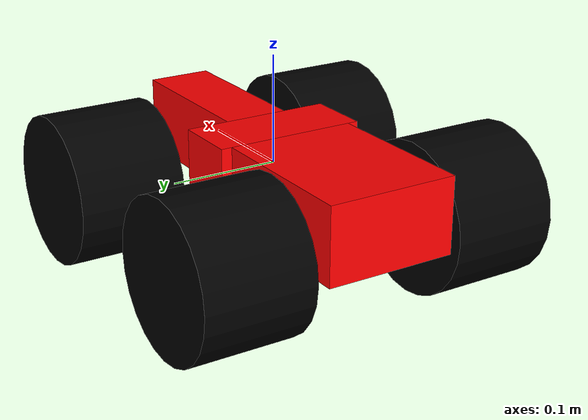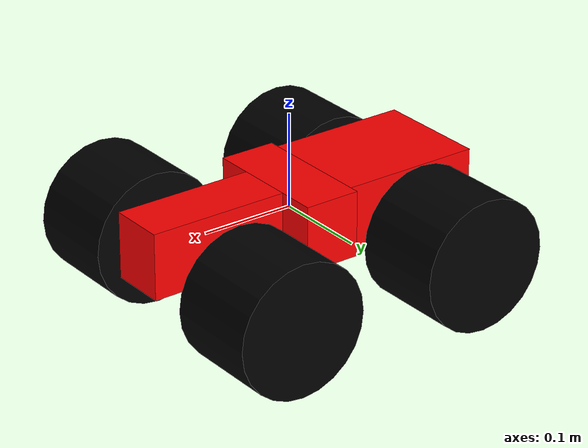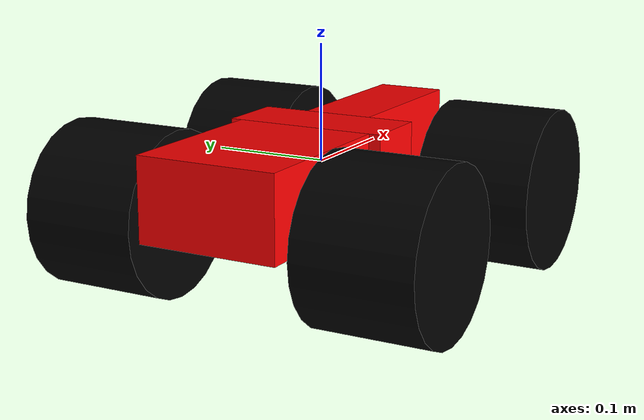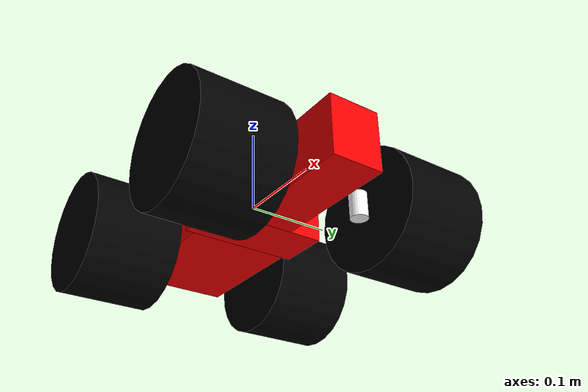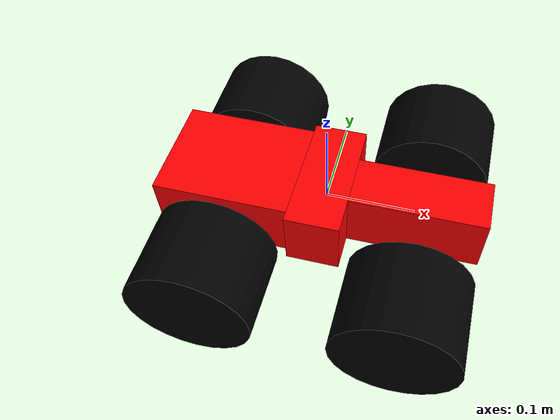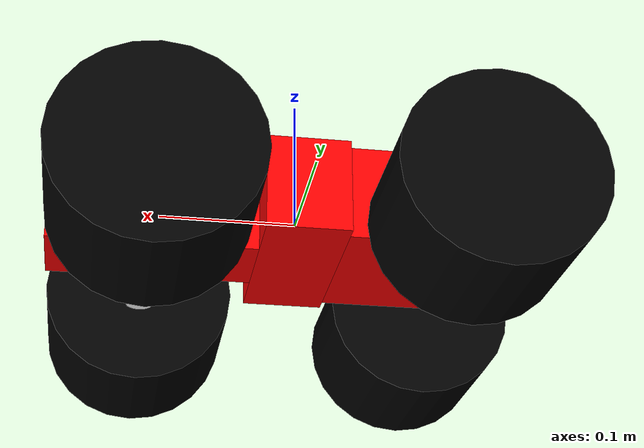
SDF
<?xml version="1.0" ?>
<sdf version="1.8">
  <model name="ackermann_car">

    <link name="chassis">
      <inertial>
        <mass>1.0</mass>
        <inertia>
          <ixx>0.005</ixx>
          <iyy>0.007</iyy>
          <izz>0.011</izz>
        </inertia>
      </inertial>

      <!-- Front section of chassis -->
      <collision name="chassis_front_collision">
        <pose>0.105 0 0 0 0 0</pose>
        <geometry>
          <box>
            <size>0.15 0.06 0.07</size>
          </box>
        </geometry>
      </collision>
      <visual name="chassis_front_visual">
        <pose>0.105 0 0 0 0 0</pose>
        <geometry>
          <box>
            <size>0.15 0.06 0.07</size>
          </box>
        </geometry>
        <material>
          <ambient>1 0 0 1</ambient>
          <diffuse>1 0 0 1</diffuse>
          <specular>0.1 0.1 0.1 1</specular>
        </material>
      </visual>

      <!-- Middle section of chassis -->
      <collision name="chassis_middle_collision">
        <pose>0 0 0 0 0 0</pose>
        <geometry>
          <box>
            <size>0.06 0.14 0.07</size>
          </box>
        </geometry>
      </collision>
      <visual name="chassis_middle_visual">
        <pose>0 0 0 0 0 0</pose>
        <geometry>
          <box>
            <size>0.06 0.14 0.07</size>
          </box>
        </geometry>
        <material>
          <ambient>1 0 0 1</ambient>
          <diffuse>1 0 0 1</diffuse>
          <specular>0.1 0.1 0.1 1</specular>
        </material>
      </visual>

      <!-- Rear section of chassis -->
      <collision name="chassis_rear_collision">
        <pose>-0.105 0 0 0 0 0</pose>
        <geometry>
          <box>
            <size>0.15 0.20 0.07</size>
          </box>
        </geometry>
      </collision>
      <visual name="chassis_rear_visual">
        <pose>-0.105 0 0 0 0 0</pose>
        <geometry>
          <box>
            <size>0.15 0.12 0.07</size>
          </box>
        </geometry>
        <material>
          <ambient>1 0 0 1</ambient>
          <diffuse>1 0 0 1</diffuse>
          <specular>0.1 0.1 0.1 1</specular>
        </material>
      </visual>

      <!-- RGB Camera Sensor -->
      <sensor name="camera" type="camera">
        <pose>0 0 0.12 0 0 0</pose>
        <camera>
          <horizontal_fov>1.047</horizontal_fov>
          <image>
            <width>320</width>
            <height>240</height>
          </image>
          <clip>
            <near>0.1</near>
            <far>100</far>
          </clip>
        </camera>
        <always_on>1</always_on>
        <update_rate>30</update_rate>
        <visualize>true</visualize>
      </sensor>

      <!-- IMU Sensor -->
      <sensor name="imu" type="imu">
        <pose>0 0 0.1 0 0 0</pose>
        <update_rate>100</update_rate>
        <imu>
          <angular_velocity>
            <x>true</x>
            <y>true</y>
            <z>true</z>
          </angular_velocity>
          <linear_acceleration>
            <x>true</x>
            <y>true</y>
            <z>true</z>
          </linear_acceleration>
        </imu>
      </sensor>

      <!-- GPS Sensor -->
      <sensor name="gps" type="gps">
        <pose>0 0 0.1 0 0 0</pose>
        <gps>
          <position_sensing>
            <horizontal>true</horizontal>
            <vertical>true</vertical>
          </position_sensing>
          <velocity_sensing>
            <horizontal>true</horizontal>
            <vertical>true</vertical>
          </velocity_sensing>
        </gps>
      </sensor>

      <!-- 2D Lidar Sensor -->
      <sensor name="lidar" type="gpu_lidar">
        <pose relative_to='lidar_frame'>0 0 0 0 0 0</pose>
        <visualize>true</visualize>
        <always_on>1</always_on>
        <update_rate>10</update_rate>
        <ray>
          <scan>
            <horizontal>
              <samples>640</samples>
              <resolution>1</resolution>
              <min_angle>-1.396263</min_angle>
              <max_angle>1.396263</max_angle>
            </horizontal>
            <vertical>
              <samples>1</samples>
              <resolution>0.01</resolution>
              <min_angle>0</min_angle>
              <max_angle>0</max_angle>
            </vertical>
          </scan>
          <range>
            <min>0.08</min>
            <max>12.0</max>
            <resolution>0.01</resolution>
          </range>
        </ray>
      </sensor>
    </link>

    <frame name="lidar_frame" attached_to='chassis'>
      <pose>0.0 0 0.1 0 0 0</pose>
    </frame>

    <!-- Steering links -->
    <link name="front_left_wheel_steering_link">
      <pose>0.11 0.06 -0.03 0 0 0</pose>
        <inertial>
          <mass>0.001</mass>
          <inertia>
            <ixx>0.001</ixx>
            <iyy>0.001</iyy>
            <izz>0.001</izz>
          </inertia>
        </inertial>
        <visual name="steering_link_visual">
          <pose>0 0 0 0 0 0</pose>
          <geometry>
            <cylinder>
              <length>0.03</length>
              <radius>0.01</radius>
            </cylinder>
          </geometry>
          <material>
            <ambient>1 1 1</ambient>
            <diffuse>1 1 1</diffuse>
          </material>
        </visual>
    </link>

    <link name="front_right_wheel_steering_link">
      <pose>0.11 -0.06 -0.03 0 0 0</pose>
        <inertial>
          <mass>0.001</mass>
          <inertia>
            <ixx>0.001</ixx>
            <iyy>0.001</iyy>
            <izz>0.001</izz>
          </inertia>
        </inertial>
        <visual name="steering_link_visual">
          <pose>0 0 0 0 0 0</pose>
          <geometry>
            <cylinder>
              <length>0.03</length>
              <radius>0.01</radius>
            </cylinder>
          </geometry>
          <material>
            <ambient>1 1 1</ambient>
            <diffuse>1 1 1</diffuse>
          </material>
        </visual>
    </link>

    <!-- Front Left Wheel -->
    <link name="front_left_wheel">
      <pose>0.11 0.12 -0.03 -1.5707 0 0</pose>
      <inertial>
        <mass>0.2</mass>
        <inertia>
          <ixx>0.0001</ixx>
          <iyy>0.0001</iyy>
          <izz>0.0001</izz>
        </inertia>
      </inertial>
      <collision name="front_left_wheel_collision">
        <geometry>
          <cylinder>
            <radius>0.07</radius>
            <length>0.10</length>
          </cylinder>
        </geometry>
      </collision>
      <visual name="front_left_wheel_visual">
        <geometry>
          <cylinder>
            <radius>0.07</radius>
            <length>0.10</length>
          </cylinder>
        </geometry>
        <material>
          <ambient>0 0 0 1</ambient>
          <diffuse>0 0 0 1</diffuse>
        </material>
      </visual>
    </link>

    <!-- Front Right Wheel -->
    <link name="front_right_wheel">
      <pose>0.11 -0.12 -0.03 -1.5707 0 0</pose>
      <inertial>
        <mass>0.2</mass>
        <inertia>
          <ixx>0.0001</ixx>
          <iyy>0.0001</iyy>
          <izz>0.0001</izz>
        </inertia>
      </inertial>
      <collision name="front_right_wheel_collision">
        <geometry>
          <cylinder>
            <radius>0.07</radius>
            <length>0.10</length>
          </cylinder>
        </geometry>
      </collision>
      <visual name="front_right_wheel_visual">
        <geometry>
          <cylinder>
            <radius>0.07</radius>
            <length>0.10</length>
          </cylinder>
        </geometry>
        <material>
          <ambient>0 0 0 1</ambient>
          <diffuse>0 0 0 1</diffuse>
        </material>
      </visual>
    </link>

    <!-- Rear Left Wheel -->
    <link name="rear_left_wheel">
      <pose>-0.11 0.12 -0.03 -1.5707 0 0</pose>
      <inertial>
        <mass>0.2</mass>
        <inertia>
          <ixx>0.0001</ixx>
          <iyy>0.0001</iyy>
          <izz>0.0001</izz>
        </inertia>
      </inertial>
      <collision name="rear_left_wheel_collision">
        <geometry>
          <cylinder>
            <radius>0.07</radius>
            <length>0.10</length>
          </cylinder>
        </geometry>
      </collision>
      <visual name="rear_left_wheel_visual">
        <geometry>
          <cylinder>
            <radius>0.07</radius>
            <length>0.10</length>
          </cylinder>
        </geometry>
        <material>
          <ambient>0 0 0 1</ambient>
          <diffuse>0 0 0 1</diffuse>
        </material>
      </visual>
    </link>

    <!-- Rear Right Wheel -->
    <link name="rear_right_wheel">
      <pose>-0.11 -0.12 -0.03 -1.5707 0 0</pose>
      <inertial>
        <mass>0.2</mass>
        <inertia>
          <ixx>0.0001</ixx>
          <iyy>0.0001</iyy>
          <izz>0.0001</izz>
        </inertia>
      </inertial>
      <collision name="rear_right_wheel_collision">
        <geometry>
          <cylinder>
            <radius>0.07</radius>
            <length>0.10</length>
          </cylinder>
        </geometry>
      </collision>
      <visual name="rear_right_wheel_visual">
        <geometry>
          <cylinder>
            <radius>0.07</radius>
            <length>0.10</length>
          </cylinder>
        </geometry>
        <material>
          <ambient>0 0 0 1</ambient>
          <diffuse>0 0 0 1</diffuse>
        </material>
      </visual>
    </link>

    <joint name="front_left_wheel_steering_joint" type="revolute">
      <parent>chassis</parent>
      <child>front_left_wheel_steering_link</child>
      <axis>
        <xyz>0 0 1</xyz>
        <limit>
          <lower>-0.5</lower>
          <upper>0.5</upper>
          <effort>25</effort>
        </limit>
      </axis>
    </joint>

    <joint name="front_right_wheel_steering_joint" type="revolute">
      <parent>chassis</parent>
      <child>front_right_wheel_steering_link</child>
      <axis>
        <xyz>0 0 1</xyz>
        <limit>
          <lower>-0.5</lower>
          <upper>0.5</upper>
          <effort>25</effort>
        </limit>
      </axis>
    </joint>

    <joint name="front_left_wheel_joint" type="revolute">
      <parent>front_left_wheel_steering_link</parent>
      <child>front_left_wheel</child>
      <axis>
        <xyz>0 0 1</xyz>
        <limit>
          <lower>-1.79769e+308</lower>
          <upper>1.79769e+308</upper>
        </limit>
      </axis>
    </joint>

    <joint name="front_right_wheel_joint" type="revolute">
      <parent>front_right_wheel_steering_link</parent>
      <child>front_right_wheel</child>
      <axis>
        <xyz>0 0 1</xyz>
        <limit>
          <lower>-1.79769e+308</lower>
          <upper>1.79769e+308</upper>
        </limit>
      </axis>
    </joint>

    <joint name="rear_left_wheel_joint" type="revolute">
      <parent>chassis</parent>
      <child>rear_left_wheel</child>
      <axis>
        <xyz>0 0 1</xyz>
        <limit>
          <lower>-1.79769e+308</lower>
          <upper>1.79769e+308</upper>
        </limit>
      </axis>
    </joint>

    <joint name="rear_right_wheel_joint" type="revolute">
      <parent>chassis</parent>
      <child>rear_right_wheel</child>
      <axis>
        <xyz>0 0 1</xyz>
        <limit>
          <lower>-1.79769e+308</lower>
          <upper>1.79769e+308</upper>
        </limit>
      </axis>
    </joint>

    <!-- Ackermann Steering Plugin -->
    <plugin
      filename="gz-sim-ackermann-steering-system"
      name="gz::sim::systems::AckermannSteering">
      <left_joint>front_left_wheel_joint</left_joint>
      <left_joint>rear_left_wheel_joint</left_joint>
      <right_joint>front_right_wheel_joint</right_joint>
      <right_joint>rear_right_wheel_joint</right_joint>
      <left_steering_joint>front_left_wheel_steering_joint</left_steering_joint>
      <right_steering_joint>front_right_wheel_steering_joint</right_steering_joint>
      <wheel_base>0.20</wheel_base>
      <wheel_separation>0.24</wheel_separation>
      <kingpin_width>0.05</kingpin_width>
      <steering_limit>0.5</steering_limit>
      <wheel_radius>0.07</wheel_radius>
      <odom_publish_frequency>50</odom_publish_frequency>
      <max_speed>2.0</max_speed>
      <min_speed>-2.0</min_speed>
      <max_acceleration>2.0</max_acceleration>
      <max_steering_rate>1.0</max_steering_rate>
    </plugin>
  </model>
</sdf>
